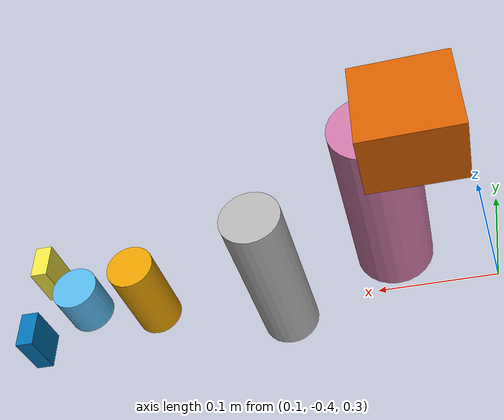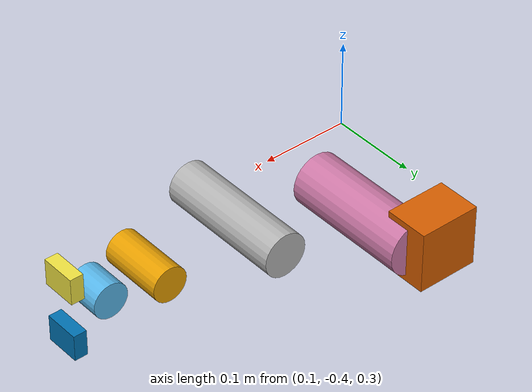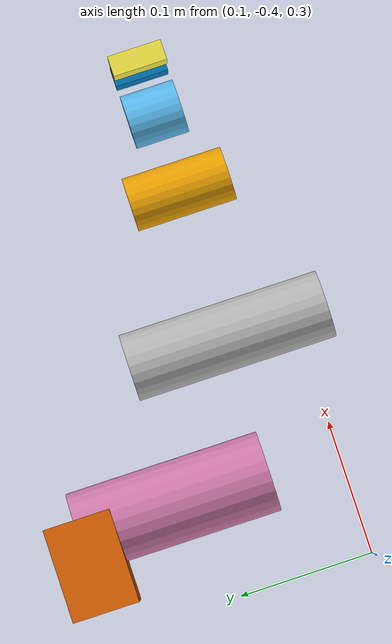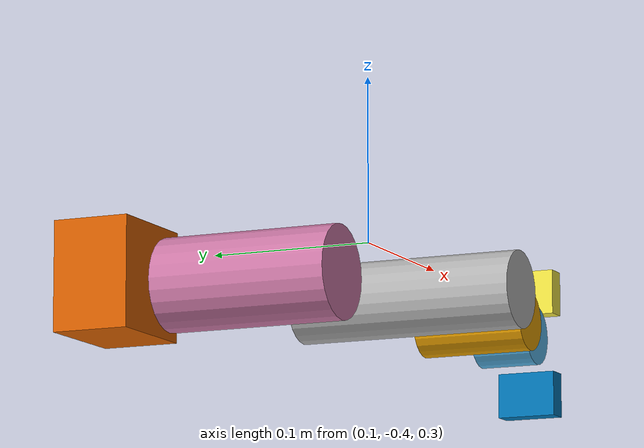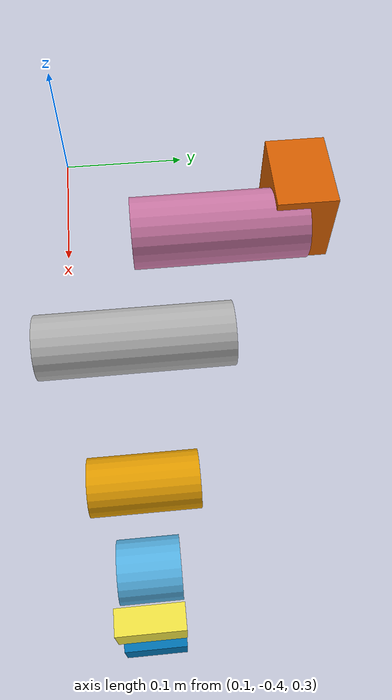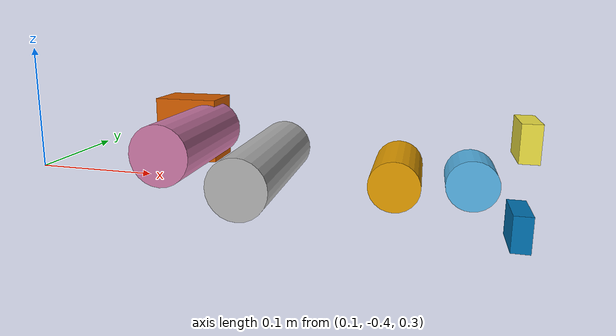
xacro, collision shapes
<?xml version="1.0" ?>
<robot xmlns:xacro="http://www.ros.org/wiki/xacro" name="abv">

    <xacro:include
        filename="$(find abv_description)/urdf/abv_chassis.urdf.xacro"
    />
    <xacro:include
        filename="$(find abv_description)/urdf/manipulators/widow_xl.urdf.xacro"
    />

    <link name="world" />

    <xacro:abv_chassis parent="world">
        <origin xyz="0 0 0" rpy="0 0 0" />
    </xacro:abv_chassis>

    <xacro:widow_xl prefix="wxr_" parent="vehicle_link">
        <origin xyz="0.155 -0.205 0.3" rpy="0 -1.57 1.57" />
    </xacro:widow_xl>

</robot>

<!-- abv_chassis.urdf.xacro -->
<robot xmlns:xacro="http://www.ros.org/wiki/xacro" name="abv_chassis">
    <xacro:macro name="abv_chassis" params="parent *origin">
        <joint name="abv_mount_joint" type="fixed">
            <parent link="${parent}" />
            <child link="base_link" />
            <xacro:insert_block name="origin" />
        </joint>

        <link name="base_link">
            <inertial>
                <mass value="0.001" />
                <inertia
                    ixx="0.001"
                    ixy="0"
                    ixz="0"
                    iyy="0.001"
                    iyz="0"
                    izz="0.001"
                />
            </inertial>
        </link>

        <!-- X translation -->
        <joint name="x_joint" type="prismatic">
            <parent link="base_link" />
            <child link="x_link" />
            <axis xyz="1 0 0" />
            <limit lower="-1.0" upper="1.0" effort="0" velocity="0.1" />
        </joint>

        <link name="x_link">
            <inertial>
                <mass value="0.001" />
                <inertia
                    ixx="0.001"
                    ixy="0"
                    ixz="0"
                    iyy="0.001"
                    iyz="0"
                    izz="0.001"
                />
            </inertial>
        </link>

        <!-- Y translation -->
        <joint name="y_joint" type="prismatic">
            <parent link="x_link" />
            <child link="y_link" />
            <axis xyz="0 1 0" />
            <limit lower="-1.0" upper="1.0" effort="0" velocity="0.1" />
        </joint>

        <link name="y_link">
            <inertial>
                <mass value="0.001" />
                <inertia
                    ixx="0.001"
                    ixy="0"
                    ixz="0"
                    iyy="0.001"
                    iyz="0"
                    izz="0.001"
                />
            </inertial>
        </link>

        <!-- Yaw rotation -->
        <joint name="yaw_joint" type="revolute">
            <parent link="y_link" />
            <child link="vehicle_link" />
            <axis xyz="0 0 1" />
            <limit lower="-3.14" upper="3.14" effort="0" velocity="0.01" />
        </joint>

        <!-- Actual vehicle link with mesh -->
        <link name="vehicle_link">
            <inertial>
                <mass value="10.0" />
                <inertia
                    ixx="0.1"
                    ixy="0"
                    ixz="0"
                    iyy="0.1"
                    iyz="0"
                    izz="0.1"
                />
            </inertial>
            <visual>
                <origin xyz="-0.0175 -0.065 0.03" rpy="0 0 0" />
                <geometry>
                    <mesh
                        filename="package://abv_description/meshes/abv_chassis/abv_v2.dae"
                    />
                </geometry>
            </visual>
        </link>

    </xacro:macro>
</robot>

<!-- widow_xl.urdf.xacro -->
<robot xmlns:xacro="http://www.ros.org/wiki/xacro" name="widow_xl">

    <xacro:macro name="widow_xl" params="prefix parent *origin">

        <joint name="${prefix}mount_joint" type="fixed">
            <parent link="${parent}" />
            <child link="${prefix}shoulder_mount" />
            <xacro:insert_block name="origin" />
        </joint>

        <link name="${prefix}shoulder_mount">
            <inertial>
                <mass value="0.2"/>
                <inertia ixx="0.0001" ixy="0.0" ixz="0.0"
                         iyy="0.0001" iyz="0.0" izz="0.0001"/>
            </inertial>
            <visual>
                <geometry>
                    <mesh filename="package://abv_description/meshes/widow-xl/shoulder_mount.dae"/>
                </geometry>
            </visual>
            <collision>
                <geometry>
                    <box size="0.07 0.07 0.05"/>
                </geometry>
            </collision>
        </link>

        <joint name="${prefix}shoulder_joint" type="revolute">
            <parent link="${prefix}shoulder_mount" />
            <child link="${prefix}shoulder_link" />
            <origin xyz="0.0 0.0 0.0" rpy="0 0 0" />
            <axis xyz="1 0 0" />
            <limit lower="-1.57" upper="1.57" effort="10" velocity="1.0" />
            <dynamics damping="5.0" friction="0.5"/>
        </joint>

        <link name="${prefix}shoulder_link">
            <inertial>
                <mass value="0.3"/>
                <origin xyz="0.0 -0.025 0.07" rpy="0 0 0"/>
                <inertia ixx="0.0005" ixy="0.0" ixz="0.0"
                         iyy="0.0005" iyz="0.0" izz="0.0001"/>
            </inertial>
            <visual>
                <geometry>
                    <mesh filename="package://abv_description/meshes/widow-xl/shoulder.dae"/>
                </geometry>
            </visual>
            <collision>
                <origin xyz="0.0 -0.025 0.07" rpy="0 0 0"/>
                <geometry>
                    <cylinder radius="0.03" length="0.145"/>
                </geometry>
            </collision>
        </link>

        <joint name="${prefix}forearm_joint" type="revolute">
            <parent link="${prefix}shoulder_link" />
            <child link="${prefix}forearm_link" />
            <origin xyz="0.0 -0.0525 0.145" rpy="0 0 0" />
            <axis xyz="1 0 0" />
            <limit lower="-1.57" upper="1.57" effort="10" velocity="1.0" />
            <dynamics damping="5.0" friction="0.5"/>
        </joint>

        <link name="${prefix}forearm_link">
            <inertial>
                <mass value="0.25"/>
                <origin xyz="0.0 -0.075 0.0" rpy="0 0 0"/>
                <inertia ixx="0.0005" ixy="0.0" ixz="0.0"
                         iyy="0.0001" iyz="0.0" izz="0.0005"/>
            </inertial>
            <visual>
                <geometry>
                    <mesh filename="package://abv_description/meshes/widow-xl/forearm.dae"/>
                </geometry>
            </visual>
            <collision>
                <origin xyz="0.0 -0.075 0.0" rpy="0 0 0"/>
                <geometry>
                    <cylinder radius="0.025" length="0.15"/>
                </geometry>
            </collision>
        </link>

        <joint name="${prefix}wrist_joint" type="revolute">
            <parent link="${prefix}forearm_link" />
            <child link="${prefix}wrist_link" />
            <origin xyz="0 -0.15 0" rpy="0 0 0" />
            <axis xyz="1 0 0" />
            <limit lower="-1.57" upper="1.57" effort="10" velocity="1.0" />
            <dynamics damping="5.0" friction="0.5"/>
        </joint>

        <link name="${prefix}wrist_link">
            <inertial>
                <mass value="0.15"/>
                <origin xyz="0.0 -0.0375 0.0" rpy="0 0 0"/>
                <inertia ixx="0.0001" ixy="0.0" ixz="0.0"
                         iyy="0.00005" iyz="0.0" izz="0.0001"/>
            </inertial>
            <visual>
                <geometry>
                    <mesh filename="package://abv_description/meshes/widow-xl/wrist.dae"/>
                </geometry>
            </visual>
            <collision>
                <origin xyz="0.0 -0.0375 0.0" rpy="0 0 0"/>
                <geometry>
                    <cylinder radius="0.02" length="0.075"/>
                </geometry>
            </collision>
        </link>

        <joint name="${prefix}wrist_rotate_joint" type="revolute">
            <parent link="${prefix}wrist_link" />
            <child link="${prefix}wrist_rotate_link" />
            <origin xyz="0 -0.075 0" rpy="0 0 -1.57" />
            <axis xyz="1 0 0" />
            <limit lower="-1.57" upper="1.57" effort="10" velocity="1.0" />
            <dynamics damping="5.0" friction="0.5"/>
        </joint>

        <link name="${prefix}wrist_rotate_link">
            <inertial>
                <mass value="0.1"/>
                <origin xyz="0.02 0.0 0.0" rpy="0 0 0"/>
                <inertia ixx="0.00005" ixy="0.0" ixz="0.0"
                         iyy="0.00005" iyz="0.0" izz="0.00005"/>
            </inertial>
            <visual>
                <geometry>
                    <mesh filename="package://abv_description/meshes/widow-xl/wrist_rotate.dae"/>
                </geometry>
            </visual>
            <collision>
                <origin xyz="0.02 0.0 0.0" rpy="0 0 0"/>
                <geometry>
                    <cylinder radius="0.02" length="0.04"/>
                </geometry>
            </collision>
        </link>

        <joint name="${prefix}gripper_joint" type="fixed">
            <parent link="${prefix}wrist_rotate_link" />
            <child link="${prefix}gripper_link" />
            <origin xyz="0.0575 0 0" rpy="0 0 0" />
        </joint>

        <!-- gripper_link is massless — mass accounted for in fingers -->
        <link name="${prefix}gripper_link"/>

        <joint name="${prefix}left_finger_joint" type="prismatic">
            <parent link="${prefix}gripper_link" />
            <child link="${prefix}left_finger_link" />
            <origin xyz="0 0.035 0" rpy="0 0 0" />
            <axis xyz="0 -1 0" />
            <limit lower="0.0" upper="0.0325" effort="10" velocity="1.0" />
            <dynamics damping="5.0" friction="0.5"/>
        </joint>

        <link name="${prefix}left_finger_link">
            <inertial>
                <mass value="0.05"/>
                <inertia ixx="0.00001" ixy="0.0" ixz="0.0"
                         iyy="0.00001" iyz="0.0" izz="0.00001"/>
            </inertial>
            <visual>
                <origin xyz="0 0 0" rpy="0 0 1.57" />
                <geometry>
                    <mesh filename="package://abv_description/meshes/widow-xl/finger.dae"/>
                </geometry>
            </visual>
            <collision>
                <geometry>
                    <box size="0.015 0.03 0.04"/>
                </geometry>
            </collision>
        </link>

        <joint name="${prefix}right_finger_joint" type="prismatic">
            <parent link="${prefix}gripper_link" />
            <child link="${prefix}right_finger_link" />
            <origin xyz="0 -0.035 0" rpy="0 0 0" />
            <axis xyz="0 1 0" />
            <limit lower="0.0" upper="0.0325" effort="10" velocity="1.0" />
            <dynamics damping="5.0" friction="0.5"/>
        </joint>

        <link name="${prefix}right_finger_link">
            <inertial>
                <mass value="0.05"/>
                <inertia ixx="0.00001" ixy="0.0" ixz="0.0"
                         iyy="0.00001" iyz="0.0" izz="0.00001"/>
            </inertial>
            <visual>
                <origin xyz="0 0 0" rpy="3.14159 0 -1.57" />
                <geometry>
                    <mesh filename="package://abv_description/meshes/widow-xl/finger.dae"/>
                </geometry>
            </visual>
            <collision>
                <geometry>
                    <box size="0.015 0.03 0.04"/>
                </geometry>
            </collision>
        </link>

    </xacro:macro>

</robot>
